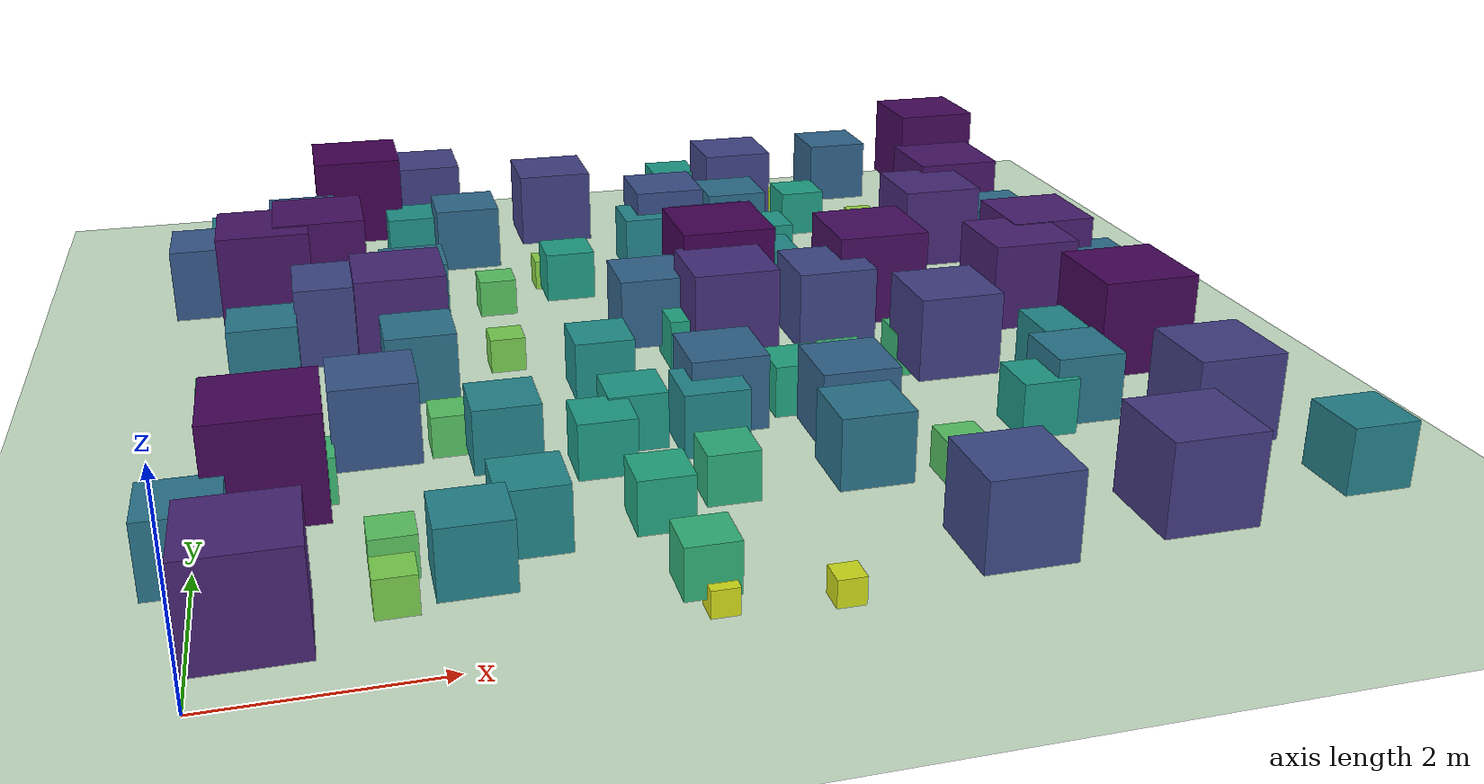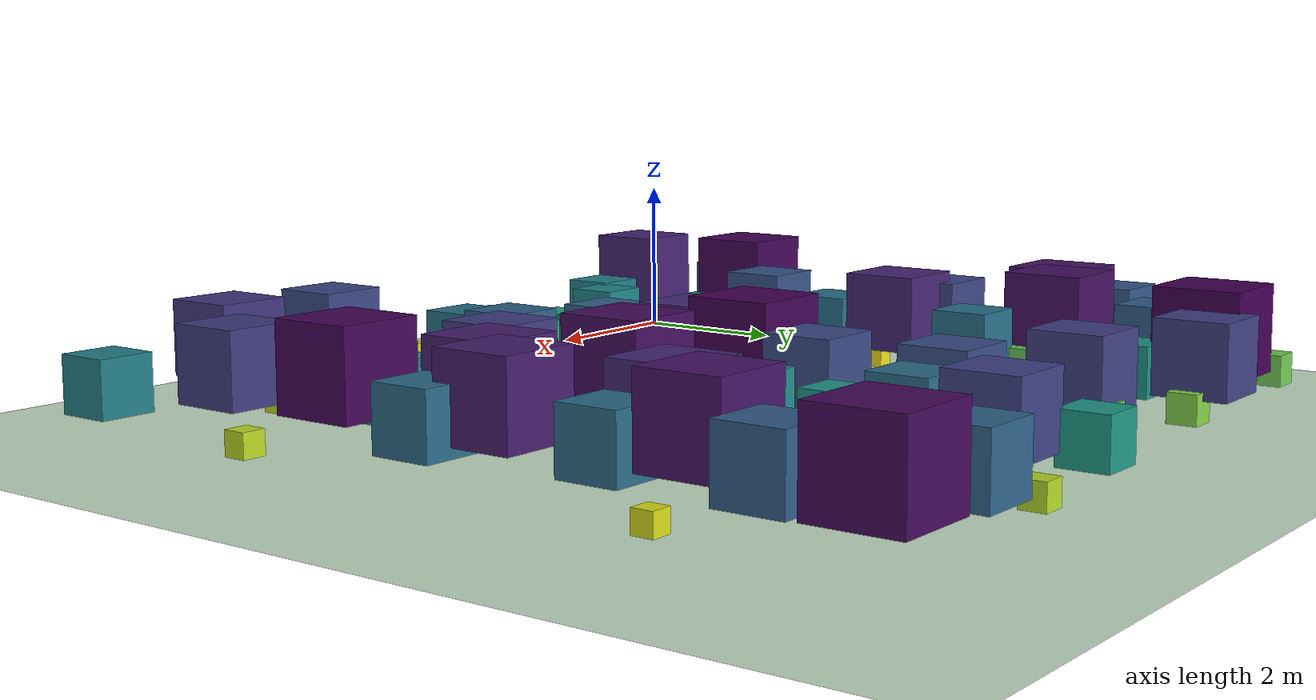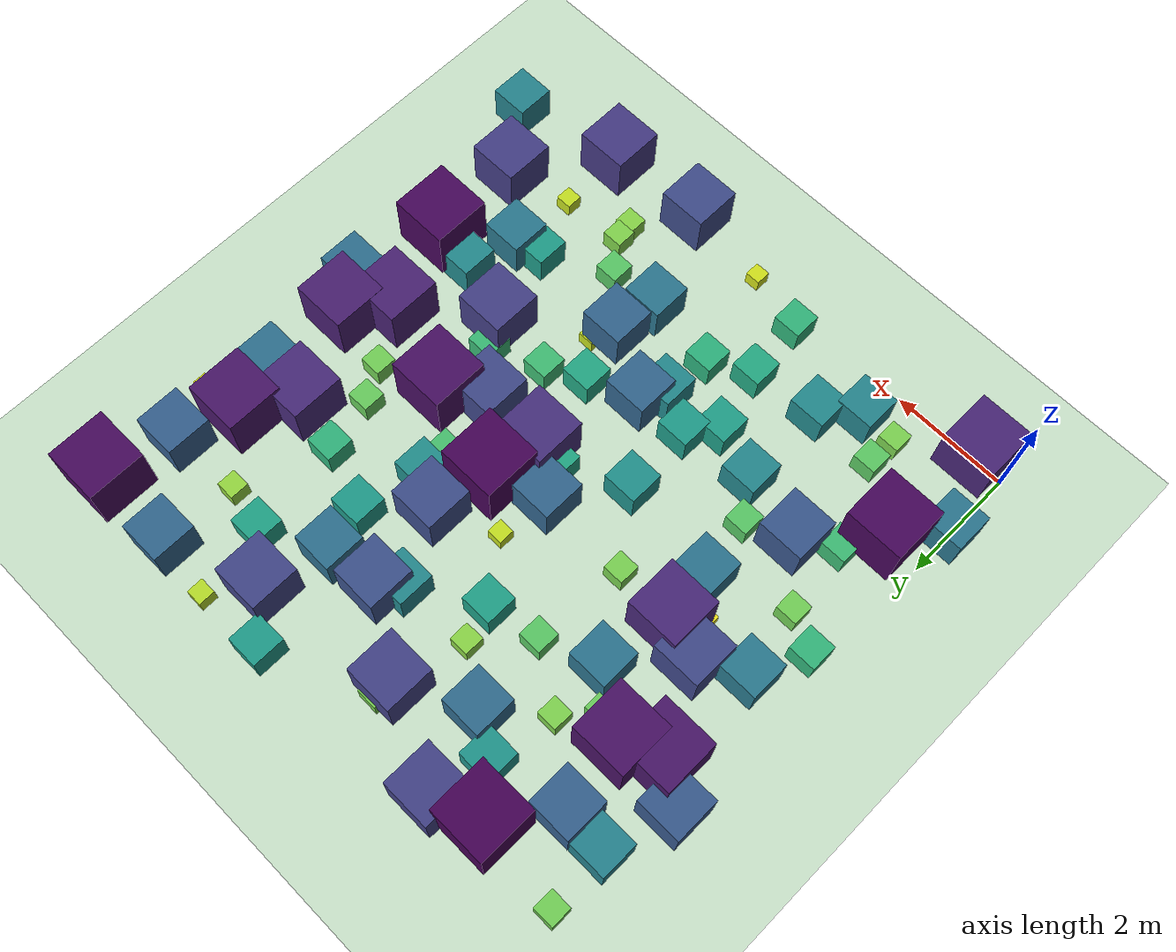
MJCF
<?xml version="1.0" encoding="utf-8"?>
<mujoco model="empty">
	<option integrator="RK4" timestep="0.01"/>
	<size nconmax="4000" njmax="4000"/>
	<asset>
		<texture builtin="gradient" height="100" rgb1="1 1 1" rgb2="0 0 0" type="skybox" width="100"/>
		<texture builtin="flat" height="1278" mark="cross" markrgb="1 1 1" name="texgeom" random="0.01" rgb1="0.8 0.6 0.4" rgb2="0.8 0.6 0.4" type="cube" width="127"/>
		<texture builtin="checker" height="100" name="texplane" rgb1="0 0 0" rgb2="0.8 0.8 0.8" type="2d" width="100"/>
		<material name="MatPlane" reflectance="0.5" shininess="1" specular="1" texrepeat="60 60" texture="texplane"/>
		<material name="geom" texture="texgeom" texuniform="true"/>
	</asset>
	<worldbody>
		<light cutoff="100" diffuse="1 1 1" dir="0 0 -1.3" directional="true" exponent="1" pos="0 0 1.3" specular="0.1 0.1 0.1"/>
		<geom conaffinity="1" condim="3" material="MatPlane" name="floor" pos="0 0 0" rgba="0.8 0.9 0.8 1" size="40 40 40" type="plane"/>
		<body pos="0.5074487274966973 0.20514608527259215 0.918610427226578">
			<freejoint/>
			<geom rgba="0.28229 0.145912 0.46151 0.9101736965966778" size="0.459305213613289 0.459305213613289 0.459305213613289" type="box"/>
		</body>
		<body pos="0.02323053837962119 1.3984004795528768 0.6853887308292643">
			<freejoint/>
			<geom rgba="0.166617 0.463708 0.558119 0.939326408646342" size="0.34269436541463216 0.34269436541463216 0.34269436541463216" type="box"/>
		</body>
		<body pos="0.6684374243744748 2.1681220438707602 0.9845761283600374">
			<freejoint/>
			<geom rgba="0.272594 0.025563 0.353093 0.9019279839549953" size="0.4922880641800187 0.4922880641800187 0.4922880641800187" type="box"/>
		</body>
		<body pos="0.8563875196699997 3.944706461077957 0.3717524949121693">
			<freejoint/>
			<geom rgba="0.449368 0.813768 0.335384 0.9785309381359788" size="0.18587624745608464 0.18587624745608464 0.18587624745608464" type="box"/>
		</body>
		<body pos="0.25802697794785323 4.267091812430102 0.4732078421566002">
			<freejoint/>
			<geom rgba="0.196571 0.711827 0.479221 0.965849019730425" size="0.2366039210783001 0.2366039210783001 0.2366039210783001" type="box"/>
		</body>
		<body pos="0.649529348330297 5.154832603029596 0.6759601209649226">
			<freejoint/>
			<geom rgba="0.162142 0.474838 0.55814 0.9405049848793847" size="0.3379800604824613 0.3379800604824613 0.3379800604824613" type="box"/>
		</body>
		<body pos="0.6985498502838509 6.909049881203784 0.9532686206275345">
			<freejoint/>
			<geom rgba="0.281446 0.08432 0.407414 0.9058414224215582" size="0.47663431031376724 0.47663431031376724 0.47663431031376724" type="box"/>
		</body>
		<body pos="0.09838590376422685 7.319327058469151 0.7762263631778654">
			<freejoint/>
			<geom rgba="0.21621 0.351535 0.550627 0.9279717046027668" size="0.3881131815889327 0.3881131815889327 0.3881131815889327" type="box"/>
		</body>
		<body pos="0.41977443819046645 8.413830459203696 0.6458106898242393">
			<freejoint/>
			<geom rgba="0.147607 0.511733 0.557049 0.9442736637719701" size="0.32290534491211964 0.32290534491211964 0.32290534491211964" type="box"/>
		</body>
		<body pos="0.34746800766045005 9.452131831072023 0.369395901488618">
			<freejoint/>
			<geom rgba="0.449368 0.813768 0.335384 0.9788255123139228" size="0.184697950744309 0.184697950744309 0.184697950744309" type="box"/>
		</body>
		<body pos="1.5788899876774876 0.7878863643322441 0.3584991384936985">
			<freejoint/>
			<geom rgba="0.487026 0.823929 0.312321 0.9801876076882877" size="0.17924956924684926 0.17924956924684926 0.17924956924684926" type="box"/>
		</body>
		<body pos="1.6041219151543735 1.3160536186291734 0.40089644790679757">
			<freejoint/>
			<geom rgba="0.360741 0.785964 0.387814 0.9748879440116504" size="0.20044822395339879 0.20044822395339879 0.20044822395339879" type="box"/>
		</body>
		<body pos="1.004880165460114 2.73001471346023 0.4502995246304662">
			<freejoint/>
			<geom rgba="0.239374 0.735588 0.455688 0.9687125594211917" size="0.2251497623152331 0.2251497623152331 0.2251497623152331" type="box"/>
		</body>
		<body pos="1.5990250906735235 3.165081109577462 0.784432196130298">
			<freejoint/>
			<geom rgba="0.221989 0.339161 0.548752 0.9269459754837127" size="0.392216098065149 0.392216098065149 0.392216098065149" type="box"/>
		</body>
		<body pos="1.667339536858511 4.877580549931605 0.21781876542060533">
			<freejoint/>
			<geom rgba="0.945636 0.899815 0.112838 0.9977726543224243" size="0.10890938271030266 0.10890938271030266 0.10890938271030266" type="box"/>
		</body>
		<body pos="1.3849300087011869 5.582854524953156 0.8274339804915853">
			<freejoint/>
			<geom rgba="0.246811 0.283237 0.535941 0.9215707524385518" size="0.41371699024579267 0.41371699024579267 0.41371699024579267" type="box"/>
		</body>
		<body pos="1.7789071707840023 6.988253150608728 0.38209702530721323">
			<freejoint/>
			<geom rgba="0.412913 0.803041 0.357269 0.9772378718365984" size="0.19104851265360662 0.19104851265360662 0.19104851265360662" type="box"/>
		</body>
		<body pos="1.2915626482725986 7.177611694555972 0.9629673788164579">
			<freejoint/>
			<geom rgba="0.279566 0.067836 0.391917 0.9046290776479428" size="0.48148368940822894 0.48148368940822894 0.48148368940822894" type="box"/>
		</body>
		<body pos="1.1344268535773625 8.369698953842878 0.7569404105718933">
			<freejoint/>
			<geom rgba="0.204903 0.375746 0.553533 0.9303824486785133" size="0.37847020528594666 0.37847020528594666 0.37847020528594666" type="box"/>
		</body>
		<body pos="1.8162907633104663 9.3034303009817 0.9999384012858039">
			<freejoint/>
			<geom rgba="0.267004 0.004874 0.329415 0.9000076998392745" size="0.49996920064290196 0.49996920064290196 0.49996920064290196" type="box"/>
		</body>
		<body pos="2.1922508233160123 0.834005415539988 0.6362908898261233">
			<freejoint/>
			<geom rgba="0.143343 0.522773 0.556295 0.9454636387717346" size="0.3181454449130616 0.3181454449130616 0.3181454449130616" type="box"/>
		</body>
		<body pos="2.720332563040656 1.3330830306400543 0.6189242746226016">
			<freejoint/>
			<geom rgba="0.136408 0.541173 0.554483 0.9476344656721748" size="0.3094621373113008 0.3094621373113008 0.3094621373113008" type="box"/>
		</body>
		<body pos="2.7233588213287643 2.874237086071144 0.6288265432658009">
			<freejoint/>
			<geom rgba="0.140536 0.530132 0.555659 0.9463966820917749" size="0.31441327163290045 0.31441327163290045 0.31441327163290045" type="box"/>
		</body>
		<body pos="2.3045494123603993 3.4311575997316943 0.4082225216926588">
			<freejoint/>
			<geom rgba="0.344074 0.780029 0.397381 0.9739721847884176" size="0.2041112608463294 0.2041112608463294 0.2041112608463294" type="box"/>
		</body>
		<body pos="2.124407946822736 4.507803153926119 0.6946781583306909">
			<freejoint/>
			<geom rgba="0.171176 0.45253 0.557965 0.9381652302086636" size="0.34733907916534545 0.34733907916534545 0.34733907916534545" type="box"/>
		</body>
		<body pos="2.016241215993331 5.371070160245806 0.9123017400277136">
			<freejoint/>
			<geom rgba="0.281412 0.155834 0.469201 0.9109622824965358" size="0.4561508700138568 0.4561508700138568 0.4561508700138568" type="box"/>
		</body>
		<body pos="2.248721699002675 6.527873243534808 0.6938221232851669">
			<freejoint/>
			<geom rgba="0.171176 0.45253 0.557965 0.9382722345893542" size="0.34691106164258345 0.34691106164258345 0.34691106164258345" type="box"/>
		</body>
		<body pos="2.219577720499126 7.524965916537557 0.35608213047182374">
			<freejoint/>
			<geom rgba="0.496615 0.826376 0.306377 0.980489733691022" size="0.17804106523591187 0.17804106523591187 0.17804106523591187" type="box"/>
		</body>
		<body pos="2.4071516565617714 8.643972946095651 0.5867434720216471">
			<freejoint/>
			<geom rgba="0.123463 0.581687 0.547445 0.9516570659972942" size="0.29337173601082356 0.29337173601082356 0.29337173601082356" type="box"/>
		</body>
		<body pos="2.633240101304503 9.560529058297314 0.8467513563813147">
			<freejoint/>
			<geom rgba="0.257322 0.25613 0.526563 0.9191560804523357" size="0.42337567819065736 0.42337567819065736 0.42337567819065736" type="box"/>
		</body>
		<body pos="3.9639983486924595 0.40683633695619115 0.4776208380740961">
			<freejoint/>
			<geom rgba="0.19109 0.708366 0.482284 0.965297395240738" size="0.23881041903704806 0.23881041903704806 0.23881041903704806" type="box"/>
		</body>
		<body pos="3.849093071034411 1.4843434384430123 0.5125683106331747">
			<freejoint/>
			<geom rgba="0.14021 0.665859 0.513427 0.9609289611708531" size="0.2562841553165873 0.2562841553165873 0.2562841553165873" type="box"/>
		</body>
		<body pos="3.569904812645903 2.572313883446848 0.5500343123713405">
			<freejoint/>
			<geom rgba="0.120081 0.622161 0.534946 0.9562457109535825" size="0.27501715618567024 0.27501715618567024 0.27501715618567024" type="box"/>
		</body>
		<body pos="3.9437623247983504 3.0235558852303934 0.5607358705823723">
			<freejoint/>
			<geom rgba="0.119423 0.611141 0.538982 0.9549080161772034" size="0.28036793529118614 0.28036793529118614 0.28036793529118614" type="box"/>
		</body>
		<body pos="3.8710439553680027 4.233504204333371 0.5950249626815097">
			<freejoint/>
			<geom rgba="0.126453 0.570633 0.549841 0.9506218796648113" size="0.29751248134075486 0.29751248134075486 0.29751248134075486" type="box"/>
		</body>
		<body pos="3.0727411443815953 5.290649005828974 0.36230735451237567">
			<freejoint/>
			<geom rgba="0.477504 0.821444 0.318195 0.9797115806859531" size="0.18115367725618783 0.18115367725618783 0.18115367725618783" type="box"/>
		</body>
		<body pos="3.1846000507143235 6.888536470120613 0.40443804106037257">
			<freejoint/>
			<geom rgba="0.35236 0.783011 0.392636 0.9744452448674534" size="0.20221902053018628 0.20221902053018628 0.20221902053018628" type="box"/>
		</body>
		<body pos="3.9001369375012365 7.65997648810319 0.3389713143913382">
			<freejoint/>
			<geom rgba="0.545524 0.838039 0.275626 0.9826285857010827" size="0.1694856571956691 0.1694856571956691 0.1694856571956691" type="box"/>
		</body>
		<body pos="3.012871083658756 8.253588613932024 0.7221997563976952">
			<freejoint/>
			<geom rgba="0.185556 0.41857 0.556753 0.9347250304502881" size="0.3610998781988476 0.3610998781988476 0.3610998781988476" type="box"/>
		</body>
		<body pos="3.0370299524702906 9.55563662433533 0.34394827891304997">
			<freejoint/>
			<geom rgba="0.525776 0.833491 0.288127 0.9820064651358688" size="0.17197413945652498 0.17197413945652498 0.17197413945652498" type="box"/>
		</body>
		<body pos="4.0333609180054175 0.1845699979887916 0.24902854791423296">
			<freejoint/>
			<geom rgba="0.845561 0.887322 0.099702 0.9938714315107209" size="0.12451427395711648 0.12451427395711648 0.12451427395711648" type="box"/>
		</body>
		<body pos="4.532558582248815 1.8427998650779225 0.4874888304307362">
			<freejoint/>
			<geom rgba="0.175707 0.6979 0.491033 0.964063896196158" size="0.2437444152153681 0.2437444152153681 0.2437444152153681" type="box"/>
		</body>
		<body pos="4.600662894358114 2.722097682628018 0.6240713528976951">
			<freejoint/>
			<geom rgba="0.13777 0.537492 0.554906 0.9469910808877882" size="0.31203567644884755 0.31203567644884755 0.31203567644884755" type="box"/>
		</body>
		<body pos="4.806432805102016 3.0960947064331323 0.7414906820715004">
			<freejoint/>
			<geom rgba="0.19586 0.395433 0.555276 0.9323136647410625" size="0.3707453410357502 0.3707453410357502 0.3707453410357502" type="box"/>
		</body>
		<body pos="4.931988590340513 4.798195936076826 0.5224001155304323">
			<freejoint/>
			<geom rgba="0.132268 0.655014 0.519661 0.959699985558696" size="0.26120005776521615 0.26120005776521615 0.26120005776521615" type="box"/>
		</body>
		<body pos="4.613709539070123 5.306431257043091 0.7417238679637994">
			<freejoint/>
			<geom rgba="0.19586 0.395433 0.555276 0.932284516504525" size="0.3708619339818997 0.3708619339818997 0.3708619339818997" type="box"/>
		</body>
		<body pos="4.770159855006501 6.129137931807128 0.27010458628817197">
			<freejoint/>
			<geom rgba="0.772852 0.877868 0.131109 0.9912369267139785" size="0.13505229314408598 0.13505229314408598 0.13505229314408598" type="box"/>
		</body>
		<body pos="4.036075727758055 7.069380913385099 0.546750476669104">
			<freejoint/>
			<geom rgba="0.12138 0.629492 0.531973 0.956656190416362" size="0.273375238334552 0.273375238334552 0.273375238334552" type="box"/>
		</body>
		<body pos="4.1507384722958935 8.85433583033304 0.8462090456086222">
			<freejoint/>
			<geom rgba="0.257322 0.25613 0.526563 0.9192238692989222" size="0.4231045228043111 0.4231045228043111 0.4231045228043111" type="box"/>
		</body>
		<body pos="4.252881340852805 9.125514399651358 0.36548632993161">
			<freejoint/>
			<geom rgba="0.468053 0.818921 0.323998 0.9793142087585488" size="0.182743164965805 0.182743164965805 0.182743164965805" type="box"/>
		</body>
		<body pos="5.0239244852603235 0.07540034645095972 0.25424716783933843">
			<freejoint/>
			<geom rgba="0.82494 0.88472 0.106217 0.9932191040200827" size="0.12712358391966921 0.12712358391966921 0.12712358391966921" type="box"/>
		</body>
		<body pos="5.765176761534596 1.7389137642526031 0.6886437435219563">
			<freejoint/>
			<geom rgba="0.168126 0.459988 0.558082 0.9389195320597554" size="0.34432187176097817 0.34432187176097817 0.34432187176097817" type="box"/>
		</body>
		<body pos="5.87429324717303 2.5116796880060694 0.7444780536490527">
			<freejoint/>
			<geom rgba="0.197636 0.391528 0.554969 0.9319402432938684" size="0.37223902682452636 0.37223902682452636 0.37223902682452636" type="box"/>
		</body>
		<body pos="5.633928989387693 3.4139611611537246 0.5211389785652467">
			<freejoint/>
			<geom rgba="0.134692 0.658636 0.517649 0.9598576276793441" size="0.26056948928262336 0.26056948928262336 0.26056948928262336" type="box"/>
		</body>
		<body pos="5.317425102809723 4.757073789636581 0.8913630712802507">
			<freejoint/>
			<geom rgba="0.277134 0.185228 0.489898 0.9135796160899686" size="0.44568153564012536 0.44568153564012536 0.44568153564012536" type="box"/>
		</body>
		<body pos="5.462262759895012 5.642319345587308 0.9966665171295361">
			<freejoint/>
			<geom rgba="0.26851 0.009605 0.335427 0.900416685358808" size="0.49833325856476807 0.49833325856476807 0.49833325856476807" type="box"/>
		</body>
		<body pos="5.704653925425469 6.618278331656411 0.8113038212808885">
			<freejoint/>
			<geom rgba="0.237441 0.305202 0.541921 0.923587022339889" size="0.40565191064044426 0.40565191064044426 0.40565191064044426" type="box"/>
		</body>
		<body pos="5.13799596337201 7.7515064415960735 0.6274826190706367">
			<freejoint/>
			<geom rgba="0.139147 0.533812 0.555298 0.9465646726161704" size="0.31374130953531837 0.31374130953531837 0.31374130953531837" type="box"/>
		</body>
		<body pos="5.407210924646367 8.034833741182002 0.8016001911670416">
			<freejoint/>
			<geom rgba="0.231674 0.318106 0.544834 0.9247999761041198" size="0.4008000955835208 0.4008000955835208 0.4008000955835208" type="box"/>
		</body>
		<body pos="5.933329939259913 9.859915796751155 0.5612906081978941">
			<freejoint/>
			<geom rgba="0.119423 0.611141 0.538982 0.9548386739752632" size="0.28064530409894706 0.28064530409894706 0.28064530409894706" type="box"/>
		</body>
		<body pos="6.40653744452059 0.08849852308583972 0.816691495418697">
			<freejoint/>
			<geom rgba="0.241237 0.296485 0.539709 0.9229135630726628" size="0.4083457477093485 0.4083457477093485 0.4083457477093485" type="box"/>
		</body>
		<body pos="6.672878386060795 1.7186396845033212 0.4064056979682213">
			<freejoint/>
			<geom rgba="0.344074 0.780029 0.397381 0.9741992877539724" size="0.20320284898411065 0.20320284898411065 0.20320284898411065" type="box"/>
		</body>
		<body pos="6.149420687450354 2.7736455457628497 0.269798831241672">
			<freejoint/>
			<geom rgba="0.772852 0.877868 0.131109 0.9912751460947911" size="0.134899415620836 0.134899415620836 0.134899415620836" type="box"/>
		</body>
		<body pos="6.254587115342333 3.7295746036696857 0.44865268442158296">
			<freejoint/>
			<geom rgba="0.24607 0.73891 0.452024 0.9689184144473021" size="0.22432634221079148 0.22432634221079148 0.22432634221079148" type="box"/>
		</body>
		<body pos="6.408566164307769 4.7577300117902865 0.8251728245827554">
			<freejoint/>
			<geom rgba="0.246811 0.283237 0.535941 0.9218533969271556" size="0.4125864122913777 0.4125864122913777 0.4125864122913777" type="box"/>
		</body>
		<body pos="6.275816272376128 5.8305811139963675 0.4319250234538545">
			<freejoint/>
			<geom rgba="0.281477 0.755203 0.432552 0.9710093720682682" size="0.21596251172692724 0.21596251172692724 0.21596251172692724" type="box"/>
		</body>
		<body pos="6.2269183686560465 6.311200567248958 0.6053612583629318">
			<freejoint/>
			<geom rgba="0.129933 0.559582 0.551864 0.9493298427046335" size="0.3026806291814659 0.3026806291814659 0.3026806291814659" type="box"/>
		</body>
		<body pos="6.5070133120524964 7.383415885060642 0.5628890767994441">
			<freejoint/>
			<geom rgba="0.119512 0.607464 0.540218 0.9546388654000695" size="0.28144453839972206 0.28144453839972206 0.28144453839972206" type="box"/>
		</body>
		<body pos="6.279924110095981 8.12083996844118 0.7066838075613806">
			<freejoint/>
			<geom rgba="0.177423 0.437527 0.557565 0.9366645240548275" size="0.3533419037806903 0.3533419037806903 0.3533419037806903" type="box"/>
		</body>
		<body pos="6.579096661173186 9.215053150857548 0.8354756864588677">
			<freejoint/>
			<geom rgba="0.252194 0.269783 0.531579 0.9205655391926415" size="0.41773784322943386 0.41773784322943386 0.41773784322943386" type="box"/>
		</body>
		<body pos="7.118904754882378 0.878917273992913 0.3406731069547986">
			<freejoint/>
			<geom rgba="0.535621 0.835785 0.281908 0.9824158616306502" size="0.1703365534773993 0.1703365534773993 0.1703365534773993" type="box"/>
		</body>
		<body pos="7.081238582646998 1.184459485078146 0.3502493787135711">
			<freejoint/>
			<geom rgba="0.506271 0.828786 0.300362 0.9812188276608036" size="0.17512468935678555 0.17512468935678555 0.17512468935678555" type="box"/>
		</body>
		<body pos="7.7213872883621715 2.343452532113983 0.5571266045419094">
			<freejoint/>
			<geom rgba="0.119483 0.614817 0.537692 0.9553591744322614" size="0.2785633022709547 0.2785633022709547 0.2785633022709547" type="box"/>
		</body>
		<body pos="7.312600081023167 3.678249048202963 0.8530832407346844">
			<freejoint/>
			<geom rgba="0.260571 0.246922 0.522828 0.9183645949081645" size="0.4265416203673422 0.4265416203673422 0.4265416203673422" type="box"/>
		</body>
		<body pos="7.112691752014715 4.084583040045711 0.4592686522455077">
			<freejoint/>
			<geom rgba="0.226397 0.728888 0.462789 0.9675914184693115" size="0.22963432612275386 0.22963432612275386 0.22963432612275386" type="box"/>
		</body>
		<body pos="7.037306723210679 5.191730424928991 0.9716061935423179">
			<freejoint/>
			<geom rgba="0.277941 0.056324 0.381191 0.9035492258072102" size="0.48580309677115896 0.48580309677115896 0.48580309677115896" type="box"/>
		</body>
		<body pos="7.806613621368957 6.071938385713076 0.3850177259147731">
			<freejoint/>
			<geom rgba="0.404001 0.800275 0.362552 0.9768727842606534" size="0.19250886295738656 0.19250886295738656 0.19250886295738656" type="box"/>
		</body>
		<body pos="7.565246752832368 7.015530088135372 0.4800539288669719">
			<freejoint/>
			<geom rgba="0.185783 0.704891 0.485273 0.9649932588916286" size="0.24002696443348595 0.24002696443348595 0.24002696443348595" type="box"/>
		</body>
		<body pos="7.326933954845424 8.66729742394312 0.5382891658923659">
			<freejoint/>
			<geom rgba="0.123444 0.636809 0.528763 0.9577138542634542" size="0.26914458294618293 0.26914458294618293 0.26914458294618293" type="box"/>
		</body>
		<body pos="7.201231938747171 9.937374506257335 0.28646615466928016">
			<freejoint/>
			<geom rgba="0.720391 0.87035 0.162603 0.98919173066634" size="0.14323307733464008 0.14323307733464008 0.14323307733464008" type="box"/>
		</body>
		<body pos="8.048938152433895 0.2206481670348397 0.8657606550755832">
			<freejoint/>
			<geom rgba="0.267968 0.223549 0.512008 0.916779918115552" size="0.4328803275377916 0.4328803275377916 0.4328803275377916" type="box"/>
		</body>
		<body pos="8.18569982460421 1.2278726707145382 0.27070007328374557">
			<freejoint/>
			<geom rgba="0.772852 0.877868 0.131109 0.9911624908395318" size="0.13535003664187278 0.13535003664187278 0.13535003664187278" type="box"/>
		</body>
		<body pos="8.146698633259723 2.4687405467318277 0.6796502873779411">
			<freejoint/>
			<geom rgba="0.163625 0.471133 0.558148 0.9400437140777573" size="0.33982514368897054 0.33982514368897054 0.33982514368897054" type="box"/>
		</body>
		<body pos="8.405538554746908 3.322986186539552 0.6200623503818684">
			<freejoint/>
			<geom rgba="0.136408 0.541173 0.554483 0.9474922062022665" size="0.3100311751909342 0.3100311751909342 0.3100311751909342" type="box"/>
		</body>
		<body pos="8.568834785180623 4.697447905626941 0.9261507802234139">
			<freejoint/>
			<geom rgba="0.283072 0.130895 0.449241 0.9092311524720733" size="0.46307539011170695 0.46307539011170695 0.46307539011170695" type="box"/>
		</body>
		<body pos="8.13017204798355 5.523517768331948 0.37123649314836826">
			<freejoint/>
			<geom rgba="0.449368 0.813768 0.335384 0.978595438356454" size="0.18561824657418413 0.18561824657418413 0.18561824657418413" type="box"/>
		</body>
		<body pos="8.388571012077781 6.815511386057947 0.9036390786149382">
			<freejoint/>
			<geom rgba="0.280255 0.165693 0.476498 0.9120451151731327" size="0.4518195393074691 0.4518195393074691 0.4518195393074691" type="box"/>
		</body>
		<body pos="8.907546682257427 7.605092004159349 0.954010859020056">
			<freejoint/>
			<geom rgba="0.281446 0.08432 0.407414 0.905748642622493" size="0.477005429510028 0.477005429510028 0.477005429510028" type="box"/>
		</body>
		<body pos="8.153600837228483 8.498149786273897 0.32703710739558495">
			<freejoint/>
			<geom rgba="0.585678 0.846661 0.249897 0.9841203615755518" size="0.16351855369779247 0.16351855369779247 0.16351855369779247" type="box"/>
		</body>
		<body pos="8.138270620911419 9.780489953782311 0.7405233480985844">
			<freejoint/>
			<geom rgba="0.1941 0.399323 0.555565 0.9324345814876769" size="0.3702616740492922 0.3702616740492922 0.3702616740492922" type="box"/>
		</body>
		<body pos="9.947134674207172 0.5657521914821966 0.6422691003264722">
			<freejoint/>
			<geom rgba="0.14618 0.515413 0.556823 0.944716362459191" size="0.3211345501632361 0.3211345501632361 0.3211345501632361" type="box"/>
		</body>
		<body pos="9.125800292097686 1.6233656934913245 0.8551074926371325">
			<freejoint/>
			<geom rgba="0.262138 0.242286 0.520837 0.9181115634203585" size="0.42755374631856624 0.42755374631856624 0.42755374631856624" type="box"/>
		</body>
		<body pos="9.927852254093947 2.6817886153916546 0.27671541937869854">
			<freejoint/>
			<geom rgba="0.751884 0.874951 0.143228 0.9904105725776626" size="0.13835770968934927 0.13835770968934927 0.13835770968934927" type="box"/>
		</body>
		<body pos="9.063199563429729 3.229333292819306 0.9848217842252385">
			<freejoint/>
			<geom rgba="0.272594 0.025563 0.353093 0.9018972769718452" size="0.49241089211261924 0.49241089211261924 0.49241089211261924" type="box"/>
		</body>
		<body pos="9.4991333506073 4.749641901568705 0.7111612404179442">
			<freejoint/>
			<geom rgba="0.179019 0.433756 0.55743 0.9361048449477569" size="0.3555806202089721 0.3555806202089721 0.3555806202089721" type="box"/>
		</body>
		<body pos="9.072215307595446 5.3425476416433835 0.931510332394611">
			<freejoint/>
			<geom rgba="0.283229 0.120777 0.440584 0.9085612084506736" size="0.4657551661973055 0.4657551661973055 0.4657551661973055" type="box"/>
		</body>
		<body pos="9.210658976108828 6.74241739164923 0.7080647019922615">
			<freejoint/>
			<geom rgba="0.177423 0.437527 0.557565 0.9364919122509673" size="0.35403235099613073 0.35403235099613073 0.35403235099613073" type="box"/>
		</body>
		<body pos="9.843393556791302 7.690843441837579 0.24230633801821277">
			<freejoint/>
			<geom rgba="0.866013 0.889868 0.095953 0.9947117077477234" size="0.12115316900910639 0.12115316900910639 0.12115316900910639" type="box"/>
		</body>
		<body pos="9.290335169939631 8.550843404013271 0.7620410304032652">
			<freejoint/>
			<geom rgba="0.206756 0.371758 0.553117 0.9297448711995918" size="0.3810205152016326 0.3810205152016326 0.3810205152016326" type="box"/>
		</body>
		<body pos="9.487285985475415 9.743606640247949 0.9807643226541651">
			<freejoint/>
			<geom rgba="0.274952 0.037752 0.364543 0.9024044596682294" size="0.49038216132708257 0.49038216132708257 0.49038216132708257" type="box"/>
		</body>
	</worldbody>
</mujoco>
